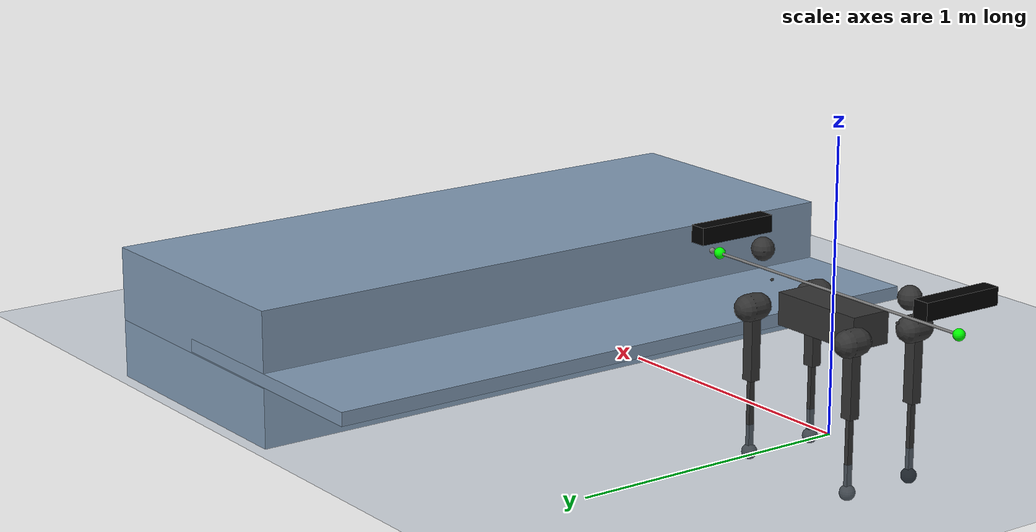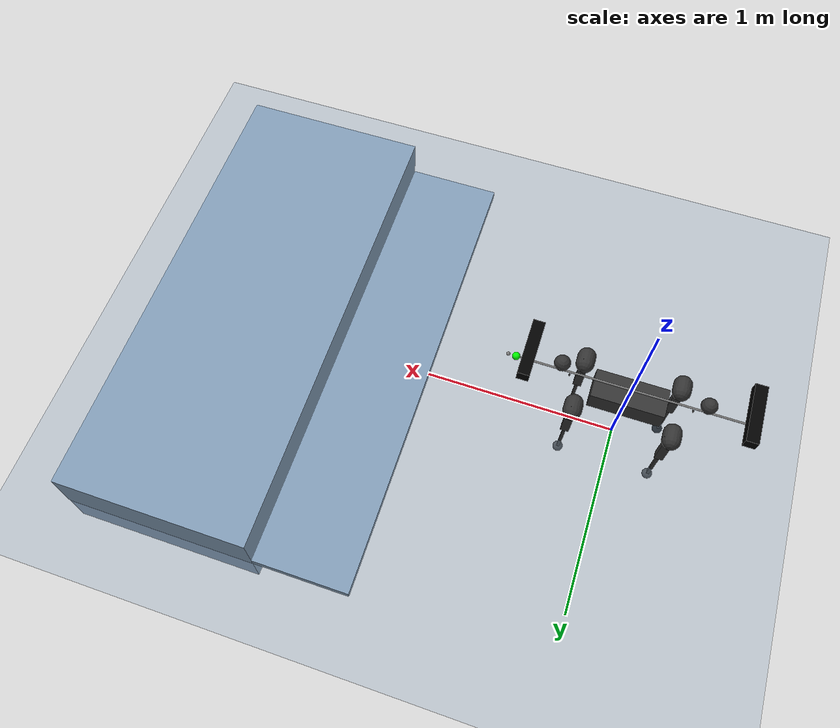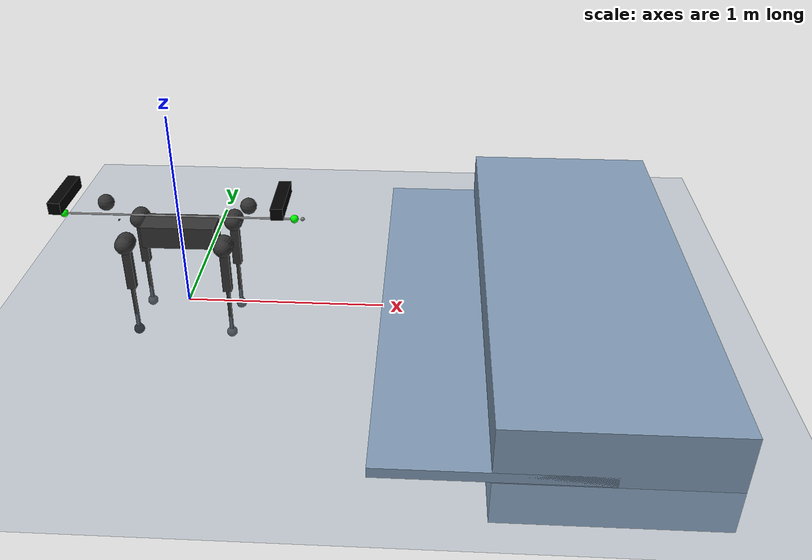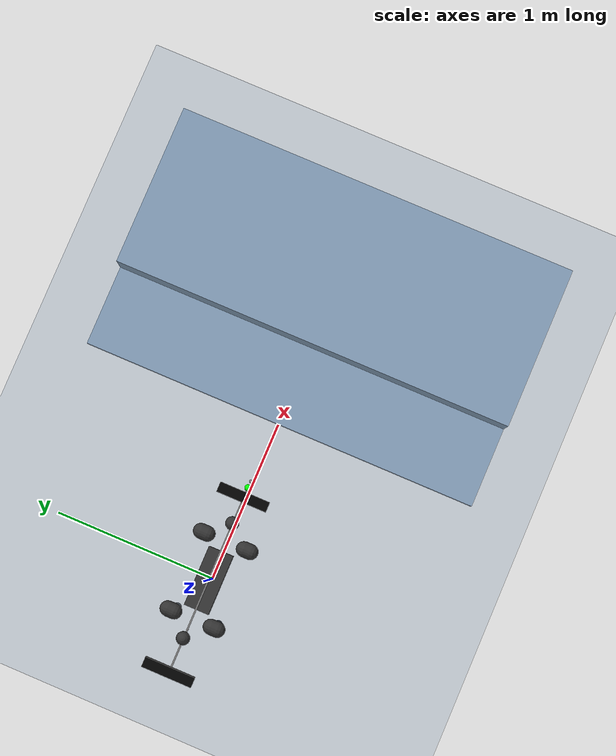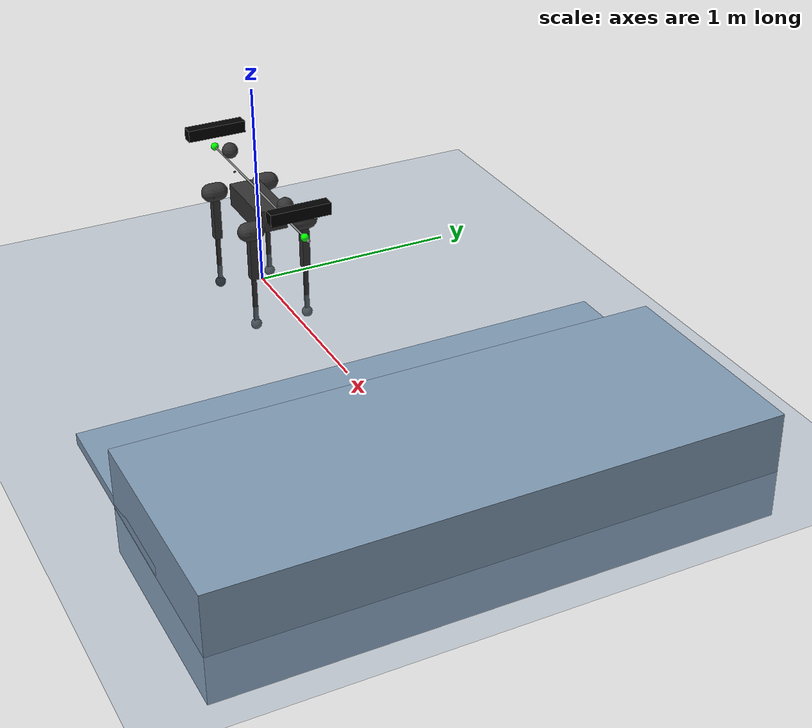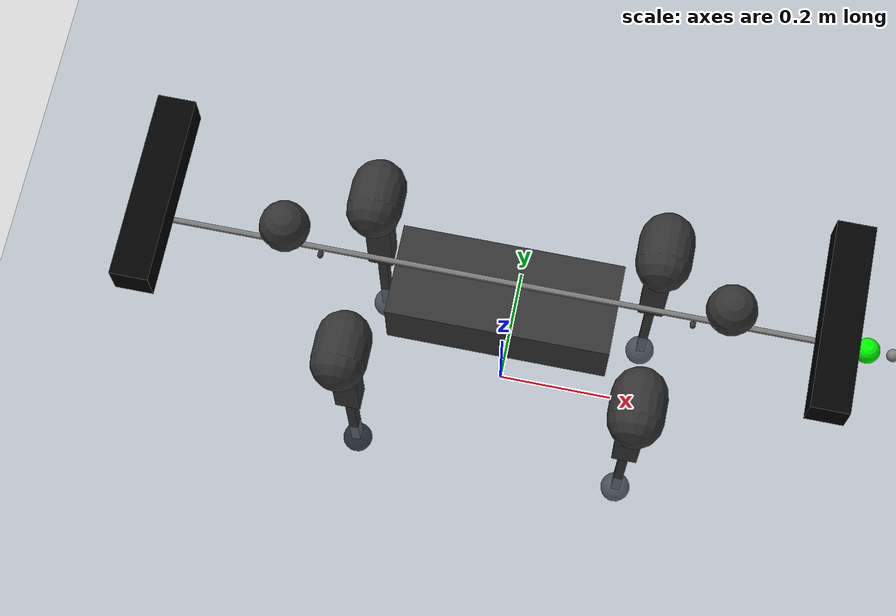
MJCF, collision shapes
<mujoco model="aliengo scene">

  <include file="aliengo_arm_leader_named.xml"/>
  <include file="aliengo_arm_follower_named.xml"/>

  <statistic center="0 0 0.1" extent="0.8"/>

  <visual>
    <headlight diffuse="0.6 0.6 0.6" ambient="0.3 0.3 0.3" specular="0 0 0"/>
    <rgba haze="0.15 0.25 0.35 1"/>
    <global azimuth="-130" elevation="-20"/>
  </visual>

  <asset>
    <texture type="skybox" builtin="gradient" rgb1="0.3 0.5 0.7" rgb2="0 0 0" width="512" height="3072"/>
    <texture type="2d" name="groundplane" builtin="checker" mark="edge" rgb1="0.2 0.3 0.4" rgb2="0.1 0.2 0.3"
      markrgb="0.8 0.8 0.8" width="300" height="300"/>
    <material name="groundplane" texture="groundplane" texuniform="true" texrepeat="5 5" reflectance="0.2"/>
  </asset>

  <worldbody>
    <light pos="0 0 1.5" dir="0 0 -1" directional="true"/>
    <geom name="floor" size="0 0 0.05" type="plane" material="groundplane"/>
    <geom pos="1.5 0.0 0.025" type="box" size="0.5 1.25 0.025" quat="1.0 0.0 0.0 0.0" />
    <geom pos="2 0.0 0.025" type="box" size="0.5 1.25 0.25" quat="1.0 0.0 0.0 0.0" />

  </worldbody>
  <tendon>
    <spatial name="link_arms" limited="true" range="0 0.8" width="0.005" stiffness="10" >
      <site site="follower/eef_contact"/>
      <site site="leader/eef_contact"/>
    </spatial>
  </tendon>

    <keyframe>
        <key name="leader_home" qpos="0.8  0 0.35 1 0 0 0 0 0.9 -1.8 0 0.9 -1.8 0 0.9 -1.8 0 0.9 -1.8 0 0 0. 0.8
                                     -0.8 0  0.35 1 0 0 0 0 0.9 -1.8 0 0.9 -1.8 0 0.9 -1.8 0 0.9 -1.8 0 0 0. 0.8

                             "
        ctrl="0 0.9 -1.8 0 0.9 -1.8 0 0.9 -1.8 0 0.9 -1.8 0 0 0 0 0.9 -1.8 0 0.9 -1.8 0 0.9 -1.8 0 0.9 -1.8 0 0 0
              "/>
    </keyframe>
</mujoco>

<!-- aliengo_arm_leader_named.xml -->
<mujoco model="aliengo_description">
    <compiler angle="radian" meshdir="./assets/" autolimits="true"/>
    <option cone="elliptic" impratio="100" />
    <size njmax="500" nconmax="100" />
    <option gravity='0 0 -9.806' timestep='0.002'/>

    <default>
        <geom contype="1" conaffinity="1" friction="0.8 0.02 0.01" rgba="0.5 0.6 0.7 1" margin="0.001" group="0"/>

        <light castshadow="false" diffuse="1 1 1"/>
        <camera fovy="60"/>
        <joint damping="3" armature="0.01" frictionloss="0.2" />

        <default class="leader/visual">
            <geom type="mesh" contype="0" conaffinity="0" group="2"/>
        </default>
        <default class="leader/collision">
            <geom group="3" rgba="0.2 0.2 0.2 0.5"/>
        </default>

        <default class="leader/hip">
            <motor ctrlrange="-44.4 44.4"/>
        </default>
        <default class="leader/thigh">
            <motor ctrlrange="-35.278 35.278"/>
        </default>
        <default class="leader/calf">
            <motor ctrlrange="-35.278 35.278"/>
        </default>

    </default>
    <!-- No rename the assests these are the mesh files-->
    <asset>
        <mesh name="leader/trunk" file="trunk.stl" />
        <mesh name="leader/hip" file="hip.stl" />
        <mesh name="leader/thigh_mirror" file="thigh_mirror.stl" />
        <mesh name="leader/calf" file="calf.stl" />
        <mesh name="leader/thigh" file="thigh.stl" />
        <mesh name="leader/base_arm_link" file="base_arm_link.stl" />
        <mesh name="leader/arm_link_1" file="arm_link_1.stl" />
        <mesh name="leader/arm_link_2" file="arm_link_2.stl" />
        <mesh name="leader/arm_link_3" file="arm_link_3.stl" />

    </asset>

    <!-- pos is used to set the position-->
    <worldbody>
        <light directional="true" diffuse=".8 .8 .8" pos="0 0 10" dir="0 0 -10"/>
        <camera pos="1.794 0.068 0.397" mode="trackcom" xyaxes="0.008 1.000 0.000 -0.155 0.001 0.988"/>
        <camera name="leader/track" mode="trackcom" pos="0 -1.3 1.6" xyaxes="1 0 0 0 0.707 0.707"/>

        <body name="leader/trunk" pos="0 0 0.4">
            <inertial pos="0.00846406 0.00404455 -0.000762916" quat="-3.12625e-05 0.708321 0.00247254 0.705886" mass="13.042" diaginertia="0.174706 0.161175 0.033357" />
            <freejoint/>

            <!-- trunk visual mesh and collision -->
            <geom type="mesh" class="leader/visual" rgba="0.2 0.2 0.2 1" mesh="leader/trunk"/>
            <geom type="box" class="leader/collision" size="0.18 0.075 0.056"/>

            <!-- modify this to add payload -->

            <!-- imu and camera -->
            <site name="leader/imu" pos="0 0 0"/>
            <camera name="leader/robotcam" pos="0.31 -0.005 0.00292751" quat= "0.4 0.4 -0.4 -0.4"/>

            <!-- FL leg -->
            <body name="leader/FL_hip" pos="0.2399 0.051 0">
                <inertial pos="-0.022191 0.015144 -1.5e-05" quat="-0.0135493 0.706835 0.0117635 0.707151" mass="1.993" diaginertia="0.00558695 0.00491009 0.00290132" />
                <joint name="leader/FL_hip_joint" pos="0 0 0" axis="1 0 0" limited="true" range="-1.22173 1.22173" />

                <!-- FL_hip visual mesh and collision -->
                <geom type="mesh" class="leader/visual" rgba="0.2 0.2 0.2 1" mesh="leader/hip"/>
                <geom type="capsule" class="leader/collision" size="0.046 0.0209" pos="0 0.083 0" quat="0.707107 0.707107 0 0"/>

                <body name="leader/FL_thigh" pos="0 0.083 0">
                    <inertial pos="-0.005607 -0.003877 -0.048199" quat="0.717987 -0.031246 -0.0335669 0.694544" mass="0.639" diaginertia="0.0058474 0.00571186 0.000324584" />
                    <joint name="leader/FL_thigh_joint" pos="0 0 0" axis="0 1 0" />

                    <!-- FL_thigh visual mesh and collision -->
                    <geom type="mesh" class="leader/visual" rgba="0.2 0.2 0.2 1" mesh="leader/thigh"/>
                    <geom type="box" class="leader/collision" size="0.125 0.0187 0.0215" pos="0 0 -0.125" quat="0.707107 0 0.707107 0"/>

                    <body name="leader/FL_calf" pos="0 0 -0.25">
                        <inertial pos="0.00215606 4.88427e-05 -0.166671" quat="0.707462 0.00517582 0.00535172 0.706712" mass="0.267" diaginertia="0.00690975 0.00689712 5.4885e-05" />
                        <joint name="leader/FL_calf_joint" pos="0 0 0" axis="0 1 0" limited="true" range="-2.77507 -0.645772" />

                        <!-- FL_calf visual mesh and collision -->
                        <geom type="mesh" class="leader/visual" rgba="0 0 0 1" mesh="leader/calf" />
                        <geom type="box" class="leader/collision" size="0.125 0.0104 0.008" pos="0 0 -0.125" quat="0.707107 0 0.707107 0"/>

                        <!-- FL_foot only collision -->
                        <geom name="FL1" class="leader/collision" size="0.0265" pos="0 0 -0.25" />
                    </body>
                </body>
            </body>

            <!-- FR leg -->
            <body name="leader/FR_hip" pos="0.2399 -0.051 0">
                <inertial pos="-0.022191 -0.015144 -1.5e-05" quat="0.0135493 0.706835 -0.0117635 0.707151" mass="1.993" diaginertia="0.00558695 0.00491009 0.00290132" />
                <joint name="leader/FR_hip_joint" pos="0 0 0" axis="1 0 0" limited="true" range="-1.22173 1.22173" />

                <!-- FR_hip visual mesh and collision -->
                <geom type="mesh" mesh="leader/hip" class="leader/visual" quat="0 1 0 0" rgba="0.2 0.2 0.2 1"/>
                <geom type="capsule" class="leader/collision" size="0.046 0.0209" pos="0 -0.083 0" quat="0.707107 0.707107 0 0"/>

                <body name="leader/FR_thigh" pos="0 -0.083 0">
                    <inertial pos="-0.005607 0.003877 -0.048199" quat="0.694544 -0.0335669 -0.031246 0.717987" mass="0.639" diaginertia="0.0058474 0.00571186 0.000324584" />
                    <joint name="leader/FR_thigh_joint" pos="0 0 0" axis="0 1 0" />

                    <!-- FR_thigh visual mesh and collision -->
                    <geom type="mesh" mesh="leader/thigh_mirror" class="leader/visual" rgba="0.2 0.2 0.2 1" />
                    <geom type="box" class="leader/collision" size="0.125 0.0187 0.0215" pos="0 0 -0.125" quat="0.707107 0 0.707107 0"/>

                    <body name="leader/FR_calf" pos="0 0 -0.25">
                        <inertial pos="0.00215606 4.88427e-05 -0.166671" quat="0.707462 0.00517582 0.00535172 0.706712" mass="0.267" diaginertia="0.00690975 0.00689712 5.4885e-05" />
                        <joint name="leader/FR_calf_joint" pos="0 0 0" axis="0 1 0" limited="true" range="-2.77507 -0.645772" />

                        <!-- FR_calf visual mesh and collision -->
                        <geom type="mesh" mesh="leader/calf" class="leader/visual" rgba="0 0 0 1"/>
                        <geom type="box" class="leader/collision" size="0.125 0.0104 0.008" pos="0 0 -0.125" quat="0.707107 0 0.707107 0"/>

                        <!-- FR_foot only collision -->
                        <geom name="FR1" class="leader/collision" size="0.0265" pos="0 0 -0.25"/>
                    </body>
                </body>
            </body>

            <!-- RL leg -->
            <body name="leader/RL_hip" pos="-0.2399 0.051 0">
                <inertial pos="0.022191 0.015144 -1.5e-05" quat="0.0117635 0.707151 -0.0135493 0.706835" mass="1.993" diaginertia="0.00558695 0.00491009 0.00290132" />
                <joint name="leader/RL_hip_joint" pos="0 0 0" axis="1 0 0" limited="true" range="-1.22173 1.22173" />

                <!-- RL_hip visual mesh and collision -->
                <geom type="mesh" class="leader/visual" quat="0 0 1 0" rgba="0.2 0.2 0.2 1" mesh="leader/hip"/>
                <geom type="capsule" class="leader/collision" size="0.046 0.0209" pos="0 0.083 0" quat="0.707107 0.707107 0 0"/>

                <body name="leader/RL_thigh" pos="0 0.083 0">
                    <inertial pos="-0.005607 -0.003877 -0.048199" quat="0.717987 -0.031246 -0.0335669 0.694544" mass="0.639" diaginertia="0.0058474 0.00571186 0.000324584" />
                    <joint name="leader/RL_thigh_joint" pos="0 0 0" axis="0 1 0" />

                    <!-- RL_thigh visual mesh and collision -->
                    <geom type="mesh" class="leader/visual" rgba="0.2 0.2 0.2 1" mesh="leader/thigh"/>
                    <geom type="box" class="leader/collision" size="0.125 0.0187 0.0215" pos="0 0 -0.125" quat="0.707107 0 0.707107 0"/>

                    <body name="leader/RL_calf" pos="0 0 -0.25">
                        <inertial pos="0.00215606 4.88427e-05 -0.166671" quat="0.707462 0.00517582 0.00535172 0.706712" mass="0.267" diaginertia="0.00690975 0.00689712 5.4885e-05" />
                        <joint name="leader/RL_calf_joint" pos="0 0 0" axis="0 1 0" limited="true" range="-2.77507 -0.645772" />

                        <!-- RL_calf visual mesh and collision -->
                        <geom type="mesh" class="leader/visual" rgba="0 0 0 1" mesh="leader/calf"/>
                        <geom type="box" class="leader/collision" size="0.125 0.0104 0.008" pos="0 0 -0.125" quat="0.707107 0 0.707107 0"/>

                        <!-- RL_foot only collision -->
                        <geom name="RL1" class="leader/collision" size="0.0265" pos="0 0 -0.25"/>
                    </body>
                </body>
            </body>

            <!-- RR leg -->
            <body name="leader/RR_hip" pos="-0.2399 -0.051 0">
                <inertial pos="0.022191 -0.015144 -1.5e-05" quat="-0.0117635 0.707151 0.0135493 0.706835" mass="1.993" diaginertia="0.00558695 0.00491009 0.00290132" />
                <joint name="leader/RR_hip_joint" pos="0 0 0" axis="1 0 0" limited="true" range="-1.22173 1.22173" />

                <!-- RR_hip visual mesh and collision -->
                <geom type="mesh" class="leader/visual" quat="0 0 0 -1" rgba="0.2 0.2 0.2 1" mesh="leader/hip"/>
                <geom type="capsule" class="leader/collision" size="0.046 0.0209" pos="0 -0.083 0" quat="0.707107 0.707107 0 0"/>

                <body name="leader/RR_thigh" pos="0 -0.083 0">
                    <inertial pos="-0.005607 0.003877 -0.048199" quat="0.694544 -0.0335669 -0.031246 0.717987" mass="0.639" diaginertia="0.0058474 0.00571186 0.000324584" />
                    <joint name="leader/RR_thigh_joint" pos="0 0 0" axis="0 1 0" />

                    <!-- RR_thigh visual mesh and collision -->
                    <geom type="mesh" class="leader/visual" rgba="0.2 0.2 0.2 1" mesh="leader/thigh_mirror"/>
                    <geom type="box" class="leader/collision" size="0.125 0.0187 0.0215" pos="0 0 -0.125" quat="0.707107 0 0.707107 0"/>

                    <body name="leader/RR_calf" pos="0 0 -0.25">
                        <inertial pos="0.00215606 4.88427e-05 -0.166671" quat="0.707462 0.00517582 0.00535172 0.706712" mass="0.267" diaginertia="0.00690975 0.00689712 5.4885e-05" />
                        <joint name="leader/RR_calf_joint" pos="0 0 0" axis="0 1 0" limited="true" range="-2.77507 -0.645772" />

                        <!-- RR_calf visual mesh and collision -->
                        <geom type="mesh" class="leader/visual" rgba="0 0 0 1" mesh="leader/calf"/>
                        <geom type="box" class="leader/collision" size="0.125 0.0104 0.008" pos="0 0 -0.125" quat="0.707107 0 0.707107 0"/>

                        <!-- RR_foot only collision -->
                        <geom name="RR1" class="leader/collision" size="0.0265" pos="0 0 -0.25" rgba="0 0 0 0"/>
                    </body>
                </body>
            </body>

            <!-- LEADER CONFIGURATION -->
            <body name="leader/arm_base" pos="-0.3 0 0.056" >

                    <inertial pos="0. 0.0 0.0" quat="0 0 0 1" mass="0.02" diaginertia="0.000004622 0.000004495 0.000002079" />
                    <geom quat="0 0 0 1" type="mesh" contype="0" conaffinity="0" group="2" rgba="0.2 0.2 0.2 1" mesh="leader/base_arm_link" />
                    <geom size="0.0046 0.00209" pos="0 0 0" quat="0.707107 0.707107 0 0" type="capsule" rgba="0.2 0.2 0.2 0" />

                    <body name="leader/arm_link_0" pos="0 0 0.06" quat="0 0 0 1">
                        <inertial pos="0. 0 0." quat="0 0 0 1" mass="0.5" diaginertia="0.000004622 0.000004495 0.000002079" />
                        <joint name="leader/arm_link_1_joint" pos="0. 0 0." axis="0 0 1" limited="true" range="-1 1"  stiffness="10"
                        damping="1" />
                        <geom type="mesh" contype="0" conaffinity="0" group="2" rgba="0.2 0.2 0.2 1" mesh="leader/arm_link_1" />

                        <body name="leader/arm_link_1" pos="0.05 0 0.035 ">
                            <inertial pos="0.0194 0.0 -0.125" quat="0 0 0 1" mass="0.5" diaginertia="0.00000457 0.000004831 0.000001409" />
                            <joint name="leader/arm_link_2_joint" pos="0.01 0 0.0" axis="0 1 0" limited="true" range="-1 1" stiffness="10"
                            damping="1" />
                            <geom type="mesh" contype="0" conaffinity="0" group="2" rgba="0.2 0.2 0.2 1" mesh="leader/arm_link_2" />
                            <geom size="0.04 0.0002 0.1" pos="0. 0 0" quat="0 0 0 1" type="capsule" rgba="0.2 0.2 0.2 0" />

                            <body name="leader/arm_link_2" pos="0.18 0.0 0.185" quat="1 0. 0 0">
                                <inertial pos="0.0388 0.0 -0.25" quat="1 0 0 0" mass="0.220" diaginertia="0.000011088 0.00001072 0.000011255" />

                                <joint name="leader/arm_link_3_joint" pos="0. 0 0" axis="0 1 0" limited="false" range="-1 0.2" stiffness="10"
                                damping="1" />
                                <geom name="leader/apply_force_frame" type="mesh" contype="0" conaffinity="0" group="2" rgba="0 0 0 1" mesh="leader/arm_link_3" />
                                <geom size="0.03 0.03 0.15" pos="0.02 0 -0.15" quat="0 0 1 1" type="box" rgba="0 0 0 0" />

                                <site name="leader/eef_leader" pos="0.04 0 -0.25" size="0.01" quat="-1 0 0 0"/>

                                <body name="leader/eef" pos="0.04 0 -0.25" quat="1 0 0 0">
                                    <inertial pos="0 0 0" mass="0.1" diaginertia="0.00001 0.00001 0.00001"/>
                                    <joint name="leader/eef_joint"  damping="0.1"/>
                                    <geom name="leader/eef_geom" type="sphere" size="0.02" rgba="0 1 0 1" contype="0" conaffinity="0"/>
                                    <site name="leader/eef_contact" pos="0 0 0" size="0.01" rgba="1 0 0 1"/>
                                </body>
                            </body>
                        </body>
                    </body>
            </body>

        </body>

        <!-- add a box mounting point -->

    </worldbody>

    <actuator>
        <motor name="leader/FR_hip"   class="leader/hip"    gear="1" joint="leader/FR_hip_joint"/>
        <motor name="leader/FR_thigh" class="leader/thigh"  gear="1" joint="leader/FR_thigh_joint"/>
        <motor name="leader/FR_calf"  class="leader/calf"   gear="1" joint="leader/FR_calf_joint"/>
        <motor name="leader/FL_hip"   class="leader/hip"    gear="1" joint="leader/FL_hip_joint"/>
        <motor name="leader/FL_thigh" class="leader/thigh"  gear="1" joint="leader/FL_thigh_joint"/>
        <motor name="leader/FL_calf"  class="leader/calf"   gear="1" joint="leader/FL_calf_joint"/>
        <motor name="leader/RR_hip"   class="leader/hip"    gear="1" joint="leader/RR_hip_joint"/>
        <motor name="leader/RR_thigh" class="leader/thigh"  gear="1" joint="leader/RR_thigh_joint"/>
        <motor name="leader/RR_calf"  class="leader/calf"   gear="1" joint="leader/RR_calf_joint" />
        <motor name="leader/RL_hip"   class="leader/hip"    gear="1" joint="leader/RL_hip_joint"/>
        <motor name="leader/RL_thigh" class="leader/thigh"  gear="1" joint="leader/RL_thigh_joint"/>
        <motor name="leader/RL_calf"  class="leader/calf"   gear="1" joint="leader/RL_calf_joint"/>
    </actuator>

    <sensor>

        <jointpos name="leader/arm_link_1_joint_pos" joint="leader/arm_link_1_joint"/>
        <jointpos name="leader/arm_link_2_joint_pos" joint="leader/arm_link_2_joint"/>
        <jointpos name="leader/arm_link_3_joint_pos" joint="leader/arm_link_3_joint"/>

    </sensor>

    <!--this defines the initial position of the robot-->
</mujoco>

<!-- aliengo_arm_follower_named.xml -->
<mujoco model="aliengo_description">
    <compiler angle="radian" meshdir="./assets/" autolimits="true"/>
    <option cone="elliptic" impratio="100" />
    <size njmax="500" nconmax="100" />
    <option gravity='0 0 -9.806' timestep='0.002'/>

    <default>
        <geom contype="1" conaffinity="1" friction="0.8 0.02 0.01" rgba="0.5 0.6 0.7 1" margin="0.001" group="0"/>

        <light castshadow="false" diffuse="1 1 1"/>
        <camera fovy="60"/>
        <joint damping="3" armature="0.01" frictionloss="0.2" />

        <default class="follower/visual">
            <geom type="mesh" contype="0" conaffinity="0" group="2"/>
        </default>
        <default class="follower/collision">
            <geom group="3" rgba="0.2 0.2 0.2 0.5"/>
        </default>

        <default class="follower/hip">
            <motor ctrlrange="-44.4 44.4"/>
        </default>
        <default class="follower/thigh">
            <motor ctrlrange="-35.278 35.278"/>
        </default>
        <default class="follower/calf">
            <motor ctrlrange="-35.278 35.278"/>
        </default>

    </default>
    <!-- No rename the assests these are the mesh files-->
    <asset>
        <mesh name="follower/trunk" file="trunk.stl" />
        <mesh name="follower/hip" file="hip.stl" />
        <mesh name="follower/thigh_mirror" file="thigh_mirror.stl" />
        <mesh name="follower/calf" file="calf.stl" />
        <mesh name="follower/thigh" file="thigh.stl" />
        <mesh name="follower/base_arm_link" file="base_arm_link.stl" />
        <mesh name="follower/arm_link_1" file="arm_link_1.stl" />
        <mesh name="follower/arm_link_2" file="arm_link_2.stl" />
        <mesh name="follower/arm_link_3" file="arm_link_3.stl" />

    </asset>

    <!-- pos is used to set the position-->
    <worldbody>
        <light directional="true" diffuse=".8 .8 .8" pos="0 0 10" dir="0 0 -10"/>
        <camera pos="1.794 0.068 0.397" mode="trackcom" xyaxes="0.008 1.000 0.000 -0.155 0.001 0.988"/>
        <camera name="follower/track" mode="trackcom" pos="0 -1.3 1.6" xyaxes="1 0 0 0 0.707 0.707"/>

        <body name="follower/trunk" pos="0 0 0.4">
            <inertial pos="0.00846406 0.00404455 -0.000762916" quat="-3.12625e-05 0.708321 0.00247254 0.705886" mass="13.042" diaginertia="0.174706 0.161175 0.033357" />
            <freejoint/>

            <!-- trunk visual mesh and collision -->
            <geom type="mesh" class="follower/visual" rgba="0.2 0.2 0.2 1" mesh="follower/trunk"/>
            <geom type="box" class="follower/collision" size="0.18 0.075 0.056"/>

            <!-- modify this to add payload -->

            <!-- imu and camera -->
            <site name="follower/imu" pos="0 0 0"/>
            <camera name="follower/robotcam" pos="0.31 -0.005 0.00292751" quat= "0.4 0.4 -0.4 -0.4"/>

            <!-- FL leg -->
            <body name="follower/FL_hip" pos="0.2399 0.051 0">
                <inertial pos="-0.022191 0.015144 -1.5e-05" quat="-0.0135493 0.706835 0.0117635 0.707151" mass="1.993" diaginertia="0.00558695 0.00491009 0.00290132" />
                <joint name="follower/FL_hip_joint" pos="0 0 0" axis="1 0 0" limited="true" range="-1.22173 1.22173" />

                <!-- FL_hip visual mesh and collision -->
                <geom type="mesh" class="follower/visual" rgba="0.2 0.2 0.2 1" mesh="follower/hip"/>
                <geom type="capsule" class="follower/collision" size="0.046 0.0209" pos="0 0.083 0" quat="0.707107 0.707107 0 0"/>

                <body name="follower/FL_thigh" pos="0 0.083 0">
                    <inertial pos="-0.005607 -0.003877 -0.048199" quat="0.717987 -0.031246 -0.0335669 0.694544" mass="0.639" diaginertia="0.0058474 0.00571186 0.000324584" />
                    <joint name="follower/FL_thigh_joint" pos="0 0 0" axis="0 1 0" />

                    <!-- FL_thigh visual mesh and collision -->
                    <geom type="mesh" class="follower/visual" rgba="0.2 0.2 0.2 1" mesh="follower/thigh"/>
                    <geom type="box" class="follower/collision" size="0.125 0.0187 0.0215" pos="0 0 -0.125" quat="0.707107 0 0.707107 0"/>

                    <body name="follower/FL_calf" pos="0 0 -0.25">
                        <inertial pos="0.00215606 4.88427e-05 -0.166671" quat="0.707462 0.00517582 0.00535172 0.706712" mass="0.267" diaginertia="0.00690975 0.00689712 5.4885e-05" />
                        <joint name="follower/FL_calf_joint" pos="0 0 0" axis="0 1 0" limited="true" range="-2.77507 -0.645772" />

                        <!-- FL_calf visual mesh and collision -->
                        <geom type="mesh" class="follower/visual" rgba="0 0 0 1" mesh="follower/calf" />
                        <geom type="box" class="follower/collision" size="0.125 0.0104 0.008" pos="0 0 -0.125" quat="0.707107 0 0.707107 0"/>

                        <!-- FL_foot only collision -->
                        <geom name="FL2" class="follower/collision" size="0.0265" pos="0 0 -0.25" />
                    </body>
                </body>
            </body>

            <!-- FR leg -->
            <body name="follower/FR_hip" pos="0.2399 -0.051 0">
                <inertial pos="-0.022191 -0.015144 -1.5e-05" quat="0.0135493 0.706835 -0.0117635 0.707151" mass="1.993" diaginertia="0.00558695 0.00491009 0.00290132" />
                <joint name="follower/FR_hip_joint" pos="0 0 0" axis="1 0 0" limited="true" range="-1.22173 1.22173" />

                <!-- FR_hip visual mesh and collision -->
                <geom type="mesh" mesh="follower/hip" class="follower/visual" quat="0 1 0 0" rgba="0.2 0.2 0.2 1"/>
                <geom type="capsule" class="follower/collision" size="0.046 0.0209" pos="0 -0.083 0" quat="0.707107 0.707107 0 0"/>

                <body name="follower/FR_thigh" pos="0 -0.083 0">
                    <inertial pos="-0.005607 0.003877 -0.048199" quat="0.694544 -0.0335669 -0.031246 0.717987" mass="0.639" diaginertia="0.0058474 0.00571186 0.000324584" />
                    <joint name="follower/FR_thigh_joint" pos="0 0 0" axis="0 1 0" />

                    <!-- FR_thigh visual mesh and collision -->
                    <geom type="mesh" mesh="follower/thigh_mirror" class="follower/visual" rgba="0.2 0.2 0.2 1" />
                    <geom type="box" class="follower/collision" size="0.125 0.0187 0.0215" pos="0 0 -0.125" quat="0.707107 0 0.707107 0"/>

                    <body name="follower/FR_calf" pos="0 0 -0.25">
                        <inertial pos="0.00215606 4.88427e-05 -0.166671" quat="0.707462 0.00517582 0.00535172 0.706712" mass="0.267" diaginertia="0.00690975 0.00689712 5.4885e-05" />
                        <joint name="follower/FR_calf_joint" pos="0 0 0" axis="0 1 0" limited="true" range="-2.77507 -0.645772" />

                        <!-- FR_calf visual mesh and collision -->
                        <geom type="mesh" mesh="follower/calf" class="follower/visual" rgba="0 0 0 1"/>
                        <geom type="box" class="follower/collision" size="0.125 0.0104 0.008" pos="0 0 -0.125" quat="0.707107 0 0.707107 0"/>

                        <!-- FR_foot only collision -->
                        <geom name="FR2" class="follower/collision" size="0.0265" pos="0 0 -0.25"/>
                    </body>
                </body>
            </body>

            <!-- RL leg -->
            <body name="follower/RL_hip" pos="-0.2399 0.051 0">
                <inertial pos="0.022191 0.015144 -1.5e-05" quat="0.0117635 0.707151 -0.0135493 0.706835" mass="1.993" diaginertia="0.00558695 0.00491009 0.00290132" />
                <joint name="follower/RL_hip_joint" pos="0 0 0" axis="1 0 0" limited="true" range="-1.22173 1.22173" />

                <!-- RL_hip visual mesh and collision -->
                <geom type="mesh" class="follower/visual" quat="0 0 1 0" rgba="0.2 0.2 0.2 1" mesh="follower/hip"/>
                <geom type="capsule" class="follower/collision" size="0.046 0.0209" pos="0 0.083 0" quat="0.707107 0.707107 0 0"/>

                <body name="follower/RL_thigh" pos="0 0.083 0">
                    <inertial pos="-0.005607 -0.003877 -0.048199" quat="0.717987 -0.031246 -0.0335669 0.694544" mass="0.639" diaginertia="0.0058474 0.00571186 0.000324584" />
                    <joint name="follower/RL_thigh_joint" pos="0 0 0" axis="0 1 0" />

                    <!-- RL_thigh visual mesh and collision -->
                    <geom type="mesh" class="follower/visual" rgba="0.2 0.2 0.2 1" mesh="follower/thigh"/>
                    <geom type="box" class="follower/collision" size="0.125 0.0187 0.0215" pos="0 0 -0.125" quat="0.707107 0 0.707107 0"/>

                    <body name="follower/RL_calf" pos="0 0 -0.25">
                        <inertial pos="0.00215606 4.88427e-05 -0.166671" quat="0.707462 0.00517582 0.00535172 0.706712" mass="0.267" diaginertia="0.00690975 0.00689712 5.4885e-05" />
                        <joint name="follower/RL_calf_joint" pos="0 0 0" axis="0 1 0" limited="true" range="-2.77507 -0.645772" />

                        <!-- RL_calf visual mesh and collision -->
                        <geom type="mesh" class="follower/visual" rgba="0 0 0 1" mesh="follower/calf"/>
                        <geom type="box" class="follower/collision" size="0.125 0.0104 0.008" pos="0 0 -0.125" quat="0.707107 0 0.707107 0"/>

                        <!-- RL_foot only collision -->
                        <geom name="RL2" class="follower/collision" size="0.0265" pos="0 0 -0.25"/>
                    </body>
                </body>
            </body>

            <!-- RR leg -->
            <body name="follower/RR_hip" pos="-0.2399 -0.051 0">
                <inertial pos="0.022191 -0.015144 -1.5e-05" quat="-0.0117635 0.707151 0.0135493 0.706835" mass="1.993" diaginertia="0.00558695 0.00491009 0.00290132" />
                <joint name="follower/RR_hip_joint" pos="0 0 0" axis="1 0 0" limited="true" range="-1.22173 1.22173" />

                <!-- RR_hip visual mesh and collision -->
                <geom type="mesh" class="follower/visual" quat="0 0 0 -1" rgba="0.2 0.2 0.2 1" mesh="follower/hip"/>
                <geom type="capsule" class="follower/collision" size="0.046 0.0209" pos="0 -0.083 0" quat="0.707107 0.707107 0 0"/>

                <body name="follower/RR_thigh" pos="0 -0.083 0">
                    <inertial pos="-0.005607 0.003877 -0.048199" quat="0.694544 -0.0335669 -0.031246 0.717987" mass="0.639" diaginertia="0.0058474 0.00571186 0.000324584" />
                    <joint name="follower/RR_thigh_joint" pos="0 0 0" axis="0 1 0" />

                    <!-- RR_thigh visual mesh and collision -->
                    <geom type="mesh" class="follower/visual" rgba="0.2 0.2 0.2 1" mesh="follower/thigh_mirror"/>
                    <geom type="box" class="follower/collision" size="0.125 0.0187 0.0215" pos="0 0 -0.125" quat="0.707107 0 0.707107 0"/>

                    <body name="follower/RR_calf" pos="0 0 -0.25">
                        <inertial pos="0.00215606 4.88427e-05 -0.166671" quat="0.707462 0.00517582 0.00535172 0.706712" mass="0.267" diaginertia="0.00690975 0.00689712 5.4885e-05" />
                        <joint name="follower/RR_calf_joint" pos="0 0 0" axis="0 1 0" limited="true" range="-2.77507 -0.645772" />

                        <!-- RR_calf visual mesh and collision -->
                        <geom type="mesh" class="follower/visual" rgba="0 0 0 1" mesh="follower/calf"/>
                        <geom type="box" class="follower/collision" size="0.125 0.0104 0.008" pos="0 0 -0.125" quat="0.707107 0 0.707107 0"/>

                        <!-- RR_foot only collision -->
                        <geom name="RR2" class="follower/collision" size="0.0265" pos="0 0 -0.25" rgba="0 0 0 0"/>
                    </body>
                </body>
            </body>

            <!-- FOLLOWER ARM -->

            <body name="follower/arm_base" pos="0.3 0 0.056" >

                    <inertial pos="0. 0.0 0.0" quat="0 0 0 1" mass="0.02" diaginertia="0.000004622 0.000004495 0.000002079" />
                    <geom quat="-1 0 0 0" type="mesh" contype="0" conaffinity="0" group="2" rgba="0.2 0.2 0.2 1" mesh="follower/base_arm_link" />
                    <geom size="0.0046 0.00209" pos="0 0 0" quat="0.707107 0.707107 0 0" type="capsule" rgba="0.2 0.2 0.2 0" />

                    <body name="follower/arm_link_0" pos="0 0 0.06" quat="0 0 0 1">
                        <inertial pos="0. 0 0." quat="0 0 0 1" mass="0.5" diaginertia="0.000004622 0.000004495 0.000002079" />
                        <joint name="follower/arm_link_1_joint" pos="0. 0 0." axis="0 0 1" limited="false" range="-3 3"  stiffness="10"
                        damping="1" />
                        <geom quat="0 0 0 1" type="mesh" contype="0" conaffinity="0" group="2" rgba="0.2 0.2 0.2 1" mesh="follower/arm_link_1" />

                        <body name="follower/arm_link_1" pos="-0.05 0 0.035 " quat="1 0. 0 0">
                            <inertial pos="0.0194 0.0 -0.125" quat="0 0 0 1" mass="0.5" diaginertia="0.00000457 0.000004831 0.000001409" />
                            <joint name="follower/arm_link_2_joint" pos="0.01 0 0.0" axis="0 1 0" limited="true" range="-1 1" stiffness="10"
                            damping="1" />
                            <geom quat="0 0 0 1" type="mesh" contype="0" conaffinity="0" group="2" rgba="0.2 0.2 0.2 1" mesh="follower/arm_link_2" />
                            <geom size="0.04 0.0002 0.1" pos="0. 0 0" quat="0 0 0 1" type="capsule" rgba="0.2 0.2 0.2 0" />

                            <body name="follower/arm_link_2" pos="-0.18 0.0 0.185" quat="1 0. 0 0">
                                <inertial pos="0.0388 0.0 -0.25" quat="1 0 0 0" mass="0.2" diaginertia="0.000011088 0.00001072 0.000011255" />

                                <joint name="follower/arm_link_3_joint" pos="0. 0 0" axis="0 1 0" limited="false" range="-1 0.2" stiffness="10"
                                damping="1" />
                                <geom quat="0 0 0 1" name="follower/apply_force_frame" type="mesh" contype="0" conaffinity="0" group="2" rgba="0 0 0 1" mesh="follower/arm_link_3" />
                                <geom size="0.03 0.03 0.15" pos="0.02 0 -0.15" quat="0 0 1 1" type="box" rgba="0 0 0 0" />

                                <site name="follower/eef_follower" pos="-0.08 0 -0.25" size="0.01" quat="-1 0 0 0"/>

                                <body name="eef" pos="-0.04 0 -0.25" quat="0 1 0.35 0" >
                                    <inertial pos="0 0 0" quat="0 0 0 1" mass="0.005" diaginertia="0.00001 0.00001 0.00001"/>
                                    <joint name="eef_joint"  damping="0.1"/>
                                    <geom name="eef_geom" type="sphere" size="0.02" rgba="0 1 0 1" contype="0" conaffinity="0"/>
                                    <site name="follower/eef_contact" pos="0 0 0" size="0.01" rgba="1 0 0 0"/>
                                </body>
                            </body>
                        </body>
                    </body>
            </body>
        </body>

        <!-- add a box mounting point -->

    </worldbody>
    <actuator>
        <motor name="follower/FR_hip"   class="follower/hip"    gear="1" joint="follower/FR_hip_joint"/>
        <motor name="follower/FR_thigh" class="follower/thigh"  gear="1" joint="follower/FR_thigh_joint"/>
        <motor name="follower/FR_calf"  class="follower/calf"   gear="1" joint="follower/FR_calf_joint"/>
        <motor name="follower/FL_hip"   class="follower/hip"    gear="1" joint="follower/FL_hip_joint"/>
        <motor name="follower/FL_thigh" class="follower/thigh"  gear="1" joint="follower/FL_thigh_joint"/>
        <motor name="follower/FL_calf"  class="follower/calf"   gear="1" joint="follower/FL_calf_joint"/>
        <motor name="follower/RR_hip"   class="follower/hip"    gear="1" joint="follower/RR_hip_joint"/>
        <motor name="follower/RR_thigh" class="follower/thigh"  gear="1" joint="follower/RR_thigh_joint"/>
        <motor name="follower/RR_calf"  class="follower/calf"   gear="1" joint="follower/RR_calf_joint" />
        <motor name="follower/RL_hip"   class="follower/hip"    gear="1" joint="follower/RL_hip_joint"/>
        <motor name="follower/RL_thigh" class="follower/thigh"  gear="1" joint="follower/RL_thigh_joint"/>
        <motor name="follower/RL_calf"  class="follower/calf"   gear="1" joint="follower/RL_calf_joint"/>
    </actuator>

    <sensor>

        <jointpos name="follower/arm_link_1_joint_pos" joint="follower/arm_link_1_joint"/>
        <jointpos name="follower/arm_link_2_joint_pos" joint="follower/arm_link_2_joint"/>
        <jointpos name="follower/arm_link_3_joint_pos" joint="follower/arm_link_3_joint"/>

    </sensor>

    <!--this defines the initial position of the robot-->
</mujoco>
